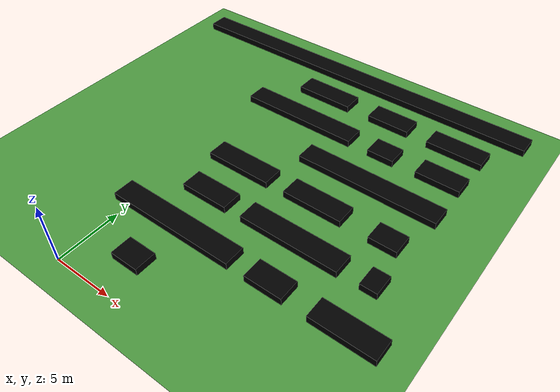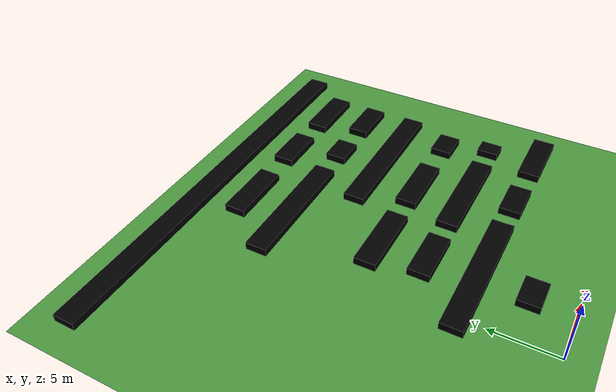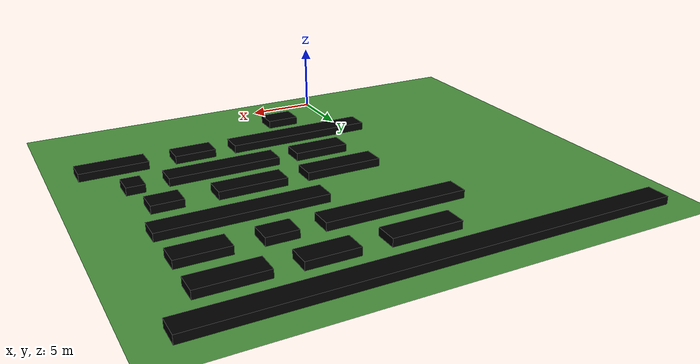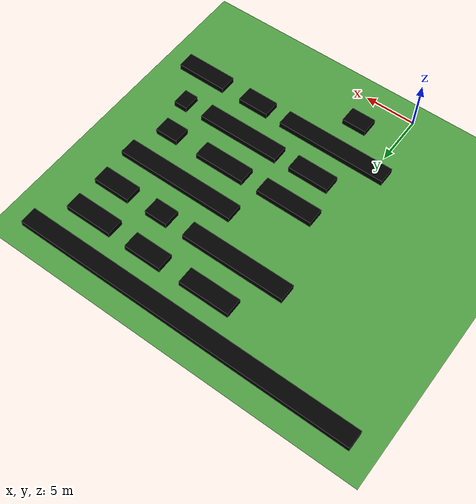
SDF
<sdf version="1.6">
 <world name="default">
  <model name="ground_plane">
   <static>1</static>
   <link name="link">
    <collision name="collision">
     <geometry><plane><normal>0 0 1</normal><size>120 120</size></plane></geometry>
     <surface><friction><ode><mu>100</mu><mu2>50</mu2></ode></friction></surface>
    </collision>
    <visual name="visual">
     <cast_shadows>0</cast_shadows>
     <geometry><plane><normal>0 0 1</normal><size>120 120</size></plane></geometry>
     <material>
      <script><uri>file://media/materials/scripts/gazebo.material</uri><name>Gazebo/Grass</name></script>
     </material>
    </visual>
   </link>
  </model>
  <model name="crop_01_8_clone_0_clone_0_clone_0">
   <link name="crop_01_0::link_0">
    <inertial>
     <mass>10.9148</mass>
     <inertia><ixx>13.7036</ixx><ixy>0</ixy><ixz>0</ixz><iyy>702.087</iyy><iyz>0</iyz><izz>715.772</izz></inertia>
    </inertial>
    <visual name="visual">
     <geometry><box><size>2.41149 1.68705 1</size></box></geometry>
     <material>
      <ambient>0 1 0 1</ambient>
      <diffuse>0 0 0 1</diffuse>
      <specular>0.1 0.1 0.1 1</specular>
      <emissive>0 0 0 0</emissive>
     </material>
    </visual>
    <collision name="collision">
     <geometry><box><size>2.41149 1.68705 1</size></box></geometry>
     <surface>
      <friction>
       <ode><mu>1</mu><mu2>1</mu2><fdir1>0 0 0</fdir1><slip1>0</slip1><slip2>0</slip2></ode>
       <torsional>
        <coefficient>1</coefficient>
        <patch_radius>0</patch_radius>
        <surface_radius>0</surface_radius>
        <use_patch_radius>1</use_patch_radius>
        <ode><slip>0</slip></ode>
       </torsional>
      </friction>
      <bounce><restitution_coefficient>0</restitution_coefficient><threshold>1e+06</threshold></bounce>
      <contact>
       <collide_without_contact>0</collide_without_contact>
       <collide_without_contact_bitmask>1</collide_without_contact_bitmask>
       <collide_bitmask>1</collide_bitmask>
       <ode>
        <soft_cfm>0</soft_cfm>
        <soft_erp>0.2</soft_erp>
        <kp>1e+13</kp>
        <kd>1</kd>
        <max_vel>0.01</max_vel>
        <min_depth>0</min_depth>
       </ode>
       <bullet>
        <split_impulse>1</split_impulse>
        <split_impulse_penetration_threshold>-0.01</split_impulse_penetration_threshold>
        <soft_cfm>0</soft_cfm>
        <soft_erp>0.2</soft_erp>
        <kp>1e+13</kp>
        <kd>1</kd>
       </bullet>
      </contact>
     </surface>
    </collision>
   </link>
   <static>1</static>
   <pose>4.01911 3.07059 0.050638 0 -0 0</pose>
  </model>
  <model name="crop_01_8_clone_0_clone_0_clone_1">
   <link name="crop_01_0::link_0">
    <inertial>
     <mass>10.9148</mass>
     <inertia><ixx>13.7036</ixx><ixy>0</ixy><ixz>0</ixz><iyy>702.087</iyy><iyz>0</iyz><izz>715.772</izz></inertia>
    </inertial>
    <visual name="visual">
     <geometry><box><size>10.9749 1.68705 1</size></box></geometry>
     <material>
      <ambient>0 1 0 1</ambient>
      <diffuse>0 0 0 1</diffuse>
      <specular>0.1 0.1 0.1 1</specular>
      <emissive>0 0 0 0</emissive>
     </material>
    </visual>
    <collision name="collision">
     <geometry><box><size>10.9749 1.68705 1</size></box></geometry>
     <surface>
      <friction>
       <ode><mu>1</mu><mu2>1</mu2><fdir1>0 0 0</fdir1><slip1>0</slip1><slip2>0</slip2></ode>
       <torsional>
        <coefficient>1</coefficient>
        <patch_radius>0</patch_radius>
        <surface_radius>0</surface_radius>
        <use_patch_radius>1</use_patch_radius>
        <ode><slip>0</slip></ode>
       </torsional>
      </friction>
      <bounce><restitution_coefficient>0</restitution_coefficient><threshold>1e+06</threshold></bounce>
      <contact>
       <collide_without_contact>0</collide_without_contact>
       <collide_without_contact_bitmask>1</collide_without_contact_bitmask>
       <collide_bitmask>1</collide_bitmask>
       <ode>
        <soft_cfm>0</soft_cfm>
        <soft_erp>0.2</soft_erp>
        <kp>1e+13</kp>
        <kd>1</kd>
        <max_vel>0.01</max_vel>
        <min_depth>0</min_depth>
       </ode>
       <bullet>
        <split_impulse>1</split_impulse>
        <split_impulse_penetration_threshold>-0.01</split_impulse_penetration_threshold>
        <soft_cfm>0</soft_cfm>
        <soft_erp>0.2</soft_erp>
        <kp>1e+13</kp>
        <kd>1</kd>
       </bullet>
      </contact>
     </surface>
    </collision>
   </link>
   <static>1</static>
   <pose>4.14547 6.85606 0.050638 0 -0 0</pose>
  </model>
  <model name="crop_01_8_clone_0_clone_0_clone_1_clone_clone">
   <link name="crop_01_0::link_0">
    <inertial>
     <mass>10.9148</mass>
     <inertia><ixx>13.7036</ixx><ixy>0</ixy><ixz>0</ixz><iyy>702.087</iyy><iyz>0</iyz><izz>715.772</izz></inertia>
    </inertial>
    <visual name="visual">
     <geometry><box><size>4.09046 1.68705 1</size></box></geometry>
     <material>
      <ambient>0 1 0 1</ambient>
      <diffuse>0 0 0 1</diffuse>
      <specular>0.1 0.1 0.1 1</specular>
      <emissive>0 0 0 0</emissive>
     </material>
    </visual>
    <collision name="collision">
     <geometry><box><size>4.09046 1.68705 1</size></box></geometry>
     <surface>
      <friction>
       <ode><mu>1</mu><mu2>1</mu2><fdir1>0 0 0</fdir1><slip1>0</slip1><slip2>0</slip2></ode>
       <torsional>
        <coefficient>1</coefficient>
        <patch_radius>0</patch_radius>
        <surface_radius>0</surface_radius>
        <use_patch_radius>1</use_patch_radius>
        <ode><slip>0</slip></ode>
       </torsional>
      </friction>
      <bounce><restitution_coefficient>0</restitution_coefficient><threshold>1e+06</threshold></bounce>
      <contact>
       <collide_without_contact>0</collide_without_contact>
       <collide_without_contact_bitmask>1</collide_without_contact_bitmask>
       <collide_bitmask>1</collide_bitmask>
       <ode>
        <soft_cfm>0</soft_cfm>
        <soft_erp>0.2</soft_erp>
        <kp>1e+13</kp>
        <kd>1</kd>
        <max_vel>0.01</max_vel>
        <min_depth>0</min_depth>
       </ode>
       <bullet>
        <split_impulse>1</split_impulse>
        <split_impulse_penetration_threshold>-0.01</split_impulse_penetration_threshold>
        <soft_cfm>0</soft_cfm>
        <soft_erp>0.2</soft_erp>
        <kp>1e+13</kp>
        <kd>1</kd>
       </bullet>
      </contact>
     </surface>
    </collision>
   </link>
   <static>1</static>
   <pose>4.07189 10.5095 0.050638 0 -0 0</pose>
  </model>
  <model name="crop_01_8_clone_0_clone_0_clone_1_clone_clone_clone">
   <link name="crop_01_0::link_0">
    <inertial>
     <mass>10.9148</mass>
     <inertia><ixx>13.7036</ixx><ixy>0</ixy><ixz>0</ixz><iyy>702.087</iyy><iyz>0</iyz><izz>715.772</izz></inertia>
    </inertial>
    <visual name="visual">
     <geometry><box><size>5.69318 1.68705 1</size></box></geometry>
     <material>
      <ambient>0 1 0 1</ambient>
      <diffuse>0 0 0 1</diffuse>
      <specular>0.1 0.1 0.1 1</specular>
      <emissive>0 0 0 0</emissive>
     </material>
    </visual>
    <collision name="collision">
     <geometry><box><size>5.69318 1.68705 1</size></box></geometry>
     <surface>
      <friction>
       <ode><mu>1</mu><mu2>1</mu2><fdir1>0 0 0</fdir1><slip1>0</slip1><slip2>0</slip2></ode>
       <torsional>
        <coefficient>1</coefficient>
        <patch_radius>0</patch_radius>
        <surface_radius>0</surface_radius>
        <use_patch_radius>1</use_patch_radius>
        <ode><slip>0</slip></ode>
       </torsional>
      </friction>
      <bounce><restitution_coefficient>0</restitution_coefficient><threshold>1e+06</threshold></bounce>
      <contact>
       <collide_without_contact>0</collide_without_contact>
       <collide_without_contact_bitmask>1</collide_without_contact_bitmask>
       <collide_bitmask>1</collide_bitmask>
       <ode>
        <soft_cfm>0</soft_cfm>
        <soft_erp>0.2</soft_erp>
        <kp>1e+13</kp>
        <kd>1</kd>
        <max_vel>0.01</max_vel>
        <min_depth>0</min_depth>
       </ode>
       <bullet>
        <split_impulse>1</split_impulse>
        <split_impulse_penetration_threshold>-0.01</split_impulse_penetration_threshold>
        <soft_cfm>0</soft_cfm>
        <soft_erp>0.2</soft_erp>
        <kp>1e+13</kp>
        <kd>1</kd>
       </bullet>
      </contact>
     </surface>
    </collision>
   </link>
   <static>1</static>
   <pose>4.07232 14.2098 0.050638 0 -0 0</pose>
  </model>
  <model name="crop_01_8_clone_0_clone_0_clone_1_clone_clone_clone_clone_0">
   <link name="crop_01_0::link_0">
    <inertial>
     <mass>10.9148</mass>
     <inertia><ixx>13.7036</ixx><ixy>0</ixy><ixz>0</ixz><iyy>702.087</iyy><iyz>0</iyz><izz>715.772</izz></inertia>
    </inertial>
    <visual name="visual">
     <geometry><box><size>10.3295 1.68705 1</size></box></geometry>
     <material>
      <ambient>0 1 0 1</ambient>
      <diffuse>0 0 0 1</diffuse>
      <specular>0.1 0.1 0.1 1</specular>
      <emissive>0 0 0 0</emissive>
     </material>
    </visual>
    <collision name="collision">
     <geometry><box><size>10.3295 1.68705 1</size></box></geometry>
     <surface>
      <friction>
       <ode><mu>1</mu><mu2>1</mu2><fdir1>0 0 0</fdir1><slip1>0</slip1><slip2>0</slip2></ode>
       <torsional>
        <coefficient>1</coefficient>
        <patch_radius>0</patch_radius>
        <surface_radius>0</surface_radius>
        <use_patch_radius>1</use_patch_radius>
        <ode><slip>0</slip></ode>
       </torsional>
      </friction>
      <bounce><restitution_coefficient>0</restitution_coefficient><threshold>1e+06</threshold></bounce>
      <contact>
       <collide_without_contact>0</collide_without_contact>
       <collide_without_contact_bitmask>1</collide_without_contact_bitmask>
       <collide_bitmask>1</collide_bitmask>
       <ode>
        <soft_cfm>0</soft_cfm>
        <soft_erp>0.2</soft_erp>
        <kp>1e+13</kp>
        <kd>1</kd>
        <max_vel>0.01</max_vel>
        <min_depth>0</min_depth>
       </ode>
       <bullet>
        <split_impulse>1</split_impulse>
        <split_impulse_penetration_threshold>-0.01</split_impulse_penetration_threshold>
        <soft_cfm>0</soft_cfm>
        <soft_erp>0.2</soft_erp>
        <kp>1e+13</kp>
        <kd>1</kd>
       </bullet>
      </contact>
     </surface>
    </collision>
   </link>
   <static>1</static>
   <pose>4.08383 21.7323 0.050638 0 -0 0</pose>
  </model>
  <model name="crop_01_8_clone_0_clone_0_clone_1_clone_clone_clone_clone_0_clone">
   <link name="crop_01_0::link_0">
    <inertial>
     <mass>10.9148</mass>
     <inertia><ixx>13.7036</ixx><ixy>0</ixy><ixz>0</ixz><iyy>702.087</iyy><iyz>0</iyz><izz>715.772</izz></inertia>
    </inertial>
    <visual name="visual">
     <geometry><box><size>5.03328 1.68705 1</size></box></geometry>
     <material>
      <ambient>0 1 0 1</ambient>
      <diffuse>0 0 0 1</diffuse>
      <specular>0.1 0.1 0.1 1</specular>
      <emissive>0 0 0 0</emissive>
     </material>
    </visual>
    <collision name="collision">
     <geometry><box><size>5.03328 1.68705 1</size></box></geometry>
     <surface>
      <friction>
       <ode><mu>1</mu><mu2>1</mu2><fdir1>0 0 0</fdir1><slip1>0</slip1><slip2>0</slip2></ode>
       <torsional>
        <coefficient>1</coefficient>
        <patch_radius>0</patch_radius>
        <surface_radius>0</surface_radius>
        <use_patch_radius>1</use_patch_radius>
        <ode><slip>0</slip></ode>
       </torsional>
      </friction>
      <bounce><restitution_coefficient>0</restitution_coefficient><threshold>1e+06</threshold></bounce>
      <contact>
       <collide_without_contact>0</collide_without_contact>
       <collide_without_contact_bitmask>1</collide_without_contact_bitmask>
       <collide_bitmask>1</collide_bitmask>
       <ode>
        <soft_cfm>0</soft_cfm>
        <soft_erp>0.2</soft_erp>
        <kp>1e+13</kp>
        <kd>1</kd>
        <max_vel>0.01</max_vel>
        <min_depth>0</min_depth>
       </ode>
       <bullet>
        <split_impulse>1</split_impulse>
        <split_impulse_penetration_threshold>-0.01</split_impulse_penetration_threshold>
        <soft_cfm>0</soft_cfm>
        <soft_erp>0.2</soft_erp>
        <kp>1e+13</kp>
        <kd>1</kd>
       </bullet>
      </contact>
     </surface>
    </collision>
   </link>
   <static>1</static>
   <pose>4.15605 25.4436 0.050638 0 -0 0</pose>
  </model>
  <model name="crop_01_8_clone_0_clone_0_clone_1_clone_clone_clone_clone_0_clone_clone_0">
   <link name="crop_01_0::link_0">
    <inertial>
     <mass>10.9148</mass>
     <inertia><ixx>13.7036</ixx><ixy>0</ixy><ixz>0</ixz><iyy>702.087</iyy><iyz>0</iyz><izz>715.772</izz></inertia>
    </inertial>
    <visual name="visual">
     <geometry><box><size>3.71638 1.68705 1</size></box></geometry>
     <material>
      <ambient>0 1 0 1</ambient>
      <diffuse>0 0 0 1</diffuse>
      <specular>0.1 0.1 0.1 1</specular>
      <emissive>0 0 0 0</emissive>
     </material>
    </visual>
    <collision name="collision">
     <geometry><box><size>3.71638 1.68705 1</size></box></geometry>
     <surface>
      <friction>
       <ode><mu>1</mu><mu2>1</mu2><fdir1>0 0 0</fdir1><slip1>0</slip1><slip2>0</slip2></ode>
       <torsional>
        <coefficient>1</coefficient>
        <patch_radius>0</patch_radius>
        <surface_radius>0</surface_radius>
        <use_patch_radius>1</use_patch_radius>
        <ode><slip>0</slip></ode>
       </torsional>
      </friction>
      <bounce><restitution_coefficient>0</restitution_coefficient><threshold>1e+06</threshold></bounce>
      <contact>
       <collide_without_contact>0</collide_without_contact>
       <collide_without_contact_bitmask>1</collide_without_contact_bitmask>
       <collide_bitmask>1</collide_bitmask>
       <ode>
        <soft_cfm>0</soft_cfm>
        <soft_erp>0.2</soft_erp>
        <kp>1e+13</kp>
        <kd>1</kd>
        <max_vel>0.01</max_vel>
        <min_depth>0</min_depth>
       </ode>
       <bullet>
        <split_impulse>1</split_impulse>
        <split_impulse_penetration_threshold>-0.01</split_impulse_penetration_threshold>
        <soft_cfm>0</soft_cfm>
        <soft_erp>0.2</soft_erp>
        <kp>1e+13</kp>
        <kd>1</kd>
       </bullet>
      </contact>
     </surface>
    </collision>
   </link>
   <static>1</static>
   <pose>10.6039 25.4804 0.050638 0 -0 0</pose>
  </model>
  <model name="crop_01_8_clone_0_clone_0_clone_1_clone_clone_clone_clone_0_clone_clone_0_clone">
   <link name="crop_01_0::link_0">
    <inertial>
     <mass>10.9148</mass>
     <inertia><ixx>13.7036</ixx><ixy>0</ixy><ixz>0</ixz><iyy>702.087</iyy><iyz>0</iyz><izz>715.772</izz></inertia>
    </inertial>
    <visual name="visual">
     <geometry><box><size>4.76608 1.68705 1</size></box></geometry>
     <material>
      <ambient>0 1 0 1</ambient>
      <diffuse>0 0 0 1</diffuse>
      <specular>0.1 0.1 0.1 1</specular>
      <emissive>0 0 0 0</emissive>
     </material>
    </visual>
    <collision name="collision">
     <geometry><box><size>4.76608 1.68705 1</size></box></geometry>
     <surface>
      <friction>
       <ode><mu>1</mu><mu2>1</mu2><fdir1>0 0 0</fdir1><slip1>0</slip1><slip2>0</slip2></ode>
       <torsional>
        <coefficient>1</coefficient>
        <patch_radius>0</patch_radius>
        <surface_radius>0</surface_radius>
        <use_patch_radius>1</use_patch_radius>
        <ode><slip>0</slip></ode>
       </torsional>
      </friction>
      <bounce><restitution_coefficient>0</restitution_coefficient><threshold>1e+06</threshold></bounce>
      <contact>
       <collide_without_contact>0</collide_without_contact>
       <collide_without_contact_bitmask>1</collide_without_contact_bitmask>
       <collide_bitmask>1</collide_bitmask>
       <ode>
        <soft_cfm>0</soft_cfm>
        <soft_erp>0.2</soft_erp>
        <kp>1e+13</kp>
        <kd>1</kd>
        <max_vel>0.01</max_vel>
        <min_depth>0</min_depth>
       </ode>
       <bullet>
        <split_impulse>1</split_impulse>
        <split_impulse_penetration_threshold>-0.01</split_impulse_penetration_threshold>
        <soft_cfm>0</soft_cfm>
        <soft_erp>0.2</soft_erp>
        <kp>1e+13</kp>
        <kd>1</kd>
       </bullet>
      </contact>
     </surface>
    </collision>
   </link>
   <static>1</static>
   <pose>16.6768 25.3873 0.050638 0 -0 0</pose>
  </model>
  <model name="crop_01_8_clone_0_clone_0_clone_1_clone_clone_clone_clone_0_clone_clone_0_clone_0">
   <link name="crop_01_0::link_0">
    <inertial>
     <mass>10.9148</mass>
     <inertia><ixx>13.7036</ixx><ixy>0</ixy><ixz>0</ixz><iyy>702.087</iyy><iyz>0</iyz><izz>715.772</izz></inertia>
    </inertial>
    <visual name="visual">
     <geometry><box><size>2.29963 1.68705 1</size></box></geometry>
     <material>
      <ambient>0 1 0 1</ambient>
      <diffuse>0 0 0 1</diffuse>
      <specular>0.1 0.1 0.1 1</specular>
      <emissive>0 0 0 0</emissive>
     </material>
    </visual>
    <collision name="collision">
     <geometry><box><size>2.29963 1.68705 1</size></box></geometry>
     <surface>
      <friction>
       <ode><mu>1</mu><mu2>1</mu2><fdir1>0 0 0</fdir1><slip1>0</slip1><slip2>0</slip2></ode>
       <torsional>
        <coefficient>1</coefficient>
        <patch_radius>0</patch_radius>
        <surface_radius>0</surface_radius>
        <use_patch_radius>1</use_patch_radius>
        <ode><slip>0</slip></ode>
       </torsional>
      </friction>
      <bounce><restitution_coefficient>0</restitution_coefficient><threshold>1e+06</threshold></bounce>
      <contact>
       <collide_without_contact>0</collide_without_contact>
       <collide_without_contact_bitmask>1</collide_without_contact_bitmask>
       <collide_bitmask>1</collide_bitmask>
       <ode>
        <soft_cfm>0</soft_cfm>
        <soft_erp>0.2</soft_erp>
        <kp>1e+13</kp>
        <kd>1</kd>
        <max_vel>0.01</max_vel>
        <min_depth>0</min_depth>
       </ode>
       <bullet>
        <split_impulse>1</split_impulse>
        <split_impulse_penetration_threshold>-0.01</split_impulse_penetration_threshold>
        <soft_cfm>0</soft_cfm>
        <soft_erp>0.2</soft_erp>
        <kp>1e+13</kp>
        <kd>1</kd>
       </bullet>
      </contact>
     </surface>
    </collision>
   </link>
   <static>1</static>
   <pose>12.1672 21.7564 0.050638 0 -0 0</pose>
  </model>
  <model name="crop_01_8_clone_0_clone_0_clone_1_clone_clone_clone_clone_0_clone_clone_0_clone_1">
   <link name="crop_01_0::link_0">
    <inertial>
     <mass>10.9148</mass>
     <inertia><ixx>13.7036</ixx><ixy>0</ixy><ixz>0</ixz><iyy>702.087</iyy><iyz>0</iyz><izz>715.772</izz></inertia>
    </inertial>
    <visual name="visual">
     <geometry><box><size>3.71639 1.68705 1</size></box></geometry>
     <material>
      <ambient>0 1 0 1</ambient>
      <diffuse>0 0 0 1</diffuse>
      <specular>0.1 0.1 0.1 1</specular>
      <emissive>0 0 0 0</emissive>
     </material>
    </visual>
    <collision name="collision">
     <geometry><box><size>3.71639 1.68705 1</size></box></geometry>
     <surface>
      <friction>
       <ode><mu>1</mu><mu2>1</mu2><fdir1>0 0 0</fdir1><slip1>0</slip1><slip2>0</slip2></ode>
       <torsional>
        <coefficient>1</coefficient>
        <patch_radius>0</patch_radius>
        <surface_radius>0</surface_radius>
        <use_patch_radius>1</use_patch_radius>
        <ode><slip>0</slip></ode>
       </torsional>
      </friction>
      <bounce><restitution_coefficient>0</restitution_coefficient><threshold>1e+06</threshold></bounce>
      <contact>
       <collide_without_contact>0</collide_without_contact>
       <collide_without_contact_bitmask>1</collide_without_contact_bitmask>
       <collide_bitmask>1</collide_bitmask>
       <ode>
        <soft_cfm>0</soft_cfm>
        <soft_erp>0.2</soft_erp>
        <kp>1e+13</kp>
        <kd>1</kd>
        <max_vel>0.01</max_vel>
        <min_depth>0</min_depth>
       </ode>
       <bullet>
        <split_impulse>1</split_impulse>
        <split_impulse_penetration_threshold>-0.01</split_impulse_penetration_threshold>
        <soft_cfm>0</soft_cfm>
        <soft_erp>0.2</soft_erp>
        <kp>1e+13</kp>
        <kd>1</kd>
       </bullet>
      </contact>
     </surface>
    </collision>
   </link>
   <static>1</static>
   <pose>17.1401 21.789 0.050638 0 -0 0</pose>
  </model>
  <model name="crop_01_8_clone_0_clone_0_clone_1_clone_clone_clone_clone_0_clone_clone_2">
   <link name="crop_01_0::link_0">
    <inertial>
     <mass>10.9148</mass>
     <inertia><ixx>13.7036</ixx><ixy>0</ixy><ixz>0</ixz><iyy>702.087</iyy><iyz>0</iyz><izz>715.772</izz></inertia>
    </inertial>
    <visual name="visual">
     <geometry><box><size>11.9696 1.68705 1</size></box></geometry>
     <material>
      <ambient>0 1 0 1</ambient>
      <diffuse>0 0 0 1</diffuse>
      <specular>0.1 0.1 0.1 1</specular>
      <emissive>0 0 0 0</emissive>
     </material>
    </visual>
    <collision name="collision">
     <geometry><box><size>11.9696 1.68705 1</size></box></geometry>
     <surface>
      <friction>
       <ode><mu>1</mu><mu2>1</mu2><fdir1>0 0 0</fdir1><slip1>0</slip1><slip2>0</slip2></ode>
       <torsional>
        <coefficient>1</coefficient>
        <patch_radius>0</patch_radius>
        <surface_radius>0</surface_radius>
        <use_patch_radius>1</use_patch_radius>
        <ode><slip>0</slip></ode>
       </torsional>
      </friction>
      <bounce><restitution_coefficient>0</restitution_coefficient><threshold>1e+06</threshold></bounce>
      <contact>
       <collide_without_contact>0</collide_without_contact>
       <collide_without_contact_bitmask>1</collide_without_contact_bitmask>
       <collide_bitmask>1</collide_bitmask>
       <ode>
        <soft_cfm>0</soft_cfm>
        <soft_erp>0.2</soft_erp>
        <kp>1e+13</kp>
        <kd>1</kd>
        <max_vel>0.01</max_vel>
        <min_depth>0</min_depth>
       </ode>
       <bullet>
        <split_impulse>1</split_impulse>
        <split_impulse_penetration_threshold>-0.01</split_impulse_penetration_threshold>
        <soft_cfm>0</soft_cfm>
        <soft_erp>0.2</soft_erp>
        <kp>1e+13</kp>
        <kd>1</kd>
       </bullet>
      </contact>
     </surface>
    </collision>
   </link>
   <static>1</static>
   <pose>13.0806 18.0451 0.050638 0 -0 0</pose>
  </model>
  <model name="crop_01_8_clone_0_clone_0_clone_1_clone_clone_clone_clone_0_clone_clone_3">
   <link name="crop_01_0::link_0">
    <inertial>
     <mass>10.9148</mass>
     <inertia><ixx>13.7036</ixx><ixy>0</ixy><ixz>0</ixz><iyy>702.087</iyy><iyz>0</iyz><izz>715.772</izz></inertia>
    </inertial>
    <visual name="visual">
     <geometry><box><size>5.03328 1.68705 1</size></box></geometry>
     <material>
      <ambient>0 1 0 1</ambient>
      <diffuse>0 0 0 1</diffuse>
      <specular>0.1 0.1 0.1 1</specular>
      <emissive>0 0 0 0</emissive>
     </material>
    </visual>
    <collision name="collision">
     <geometry><box><size>5.03328 1.68705 1</size></box></geometry>
     <surface>
      <friction>
       <ode><mu>1</mu><mu2>1</mu2><fdir1>0 0 0</fdir1><slip1>0</slip1><slip2>0</slip2></ode>
       <torsional>
        <coefficient>1</coefficient>
        <patch_radius>0</patch_radius>
        <surface_radius>0</surface_radius>
        <use_patch_radius>1</use_patch_radius>
        <ode><slip>0</slip></ode>
       </torsional>
      </friction>
      <bounce><restitution_coefficient>0</restitution_coefficient><threshold>1e+06</threshold></bounce>
      <contact>
       <collide_without_contact>0</collide_without_contact>
       <collide_without_contact_bitmask>1</collide_without_contact_bitmask>
       <collide_bitmask>1</collide_bitmask>
       <ode>
        <soft_cfm>0</soft_cfm>
        <soft_erp>0.2</soft_erp>
        <kp>1e+13</kp>
        <kd>1</kd>
        <max_vel>0.01</max_vel>
        <min_depth>0</min_depth>
       </ode>
       <bullet>
        <split_impulse>1</split_impulse>
        <split_impulse_penetration_threshold>-0.01</split_impulse_penetration_threshold>
        <soft_cfm>0</soft_cfm>
        <soft_erp>0.2</soft_erp>
        <kp>1e+13</kp>
        <kd>1</kd>
       </bullet>
      </contact>
     </surface>
    </collision>
   </link>
   <static>1</static>
   <pose>11.0347 14.261 0.050638 0 -0 0</pose>
  </model>
  <model name="crop_01_8_clone_0_clone_0_clone_1_clone_clone_clone_clone_0_clone_clone_0_clone_0_clone">
   <link name="crop_01_0::link_0">
    <inertial>
     <mass>10.9148</mass>
     <inertia><ixx>13.7036</ixx><ixy>0</ixy><ixz>0</ixz><iyy>702.087</iyy><iyz>0</iyz><izz>715.772</izz></inertia>
    </inertial>
    <visual name="visual">
     <geometry><box><size>2.29963 1.68705 1</size></box></geometry>
     <material>
      <ambient>0 1 0 1</ambient>
      <diffuse>0 0 0 1</diffuse>
      <specular>0.1 0.1 0.1 1</specular>
      <emissive>0 0 0 0</emissive>
     </material>
    </visual>
    <collision name="collision">
     <geometry><box><size>2.29963 1.68705 1</size></box></geometry>
     <surface>
      <friction>
       <ode><mu>1</mu><mu2>1</mu2><fdir1>0 0 0</fdir1><slip1>0</slip1><slip2>0</slip2></ode>
       <torsional>
        <coefficient>1</coefficient>
        <patch_radius>0</patch_radius>
        <surface_radius>0</surface_radius>
        <use_patch_radius>1</use_patch_radius>
        <ode><slip>0</slip></ode>
       </torsional>
      </friction>
      <bounce><restitution_coefficient>0</restitution_coefficient><threshold>1e+06</threshold></bounce>
      <contact>
       <collide_without_contact>0</collide_without_contact>
       <collide_without_contact_bitmask>1</collide_without_contact_bitmask>
       <collide_bitmask>1</collide_bitmask>
       <ode>
        <soft_cfm>0</soft_cfm>
        <soft_erp>0.2</soft_erp>
        <kp>1e+13</kp>
        <kd>1</kd>
        <max_vel>0.01</max_vel>
        <min_depth>0</min_depth>
       </ode>
       <bullet>
        <split_impulse>1</split_impulse>
        <split_impulse_penetration_threshold>-0.01</split_impulse_penetration_threshold>
        <soft_cfm>0</soft_cfm>
        <soft_erp>0.2</soft_erp>
        <kp>1e+13</kp>
        <kd>1</kd>
       </bullet>
      </contact>
     </surface>
    </collision>
   </link>
   <static>1</static>
   <pose>17.0148 14.2347 0.050638 0 -0 0</pose>
  </model>
  <model name="crop_01_8_clone_0_clone_0_clone_1_clone_clone_clone_clone_0_clone_clone_4_clone">
   <link name="crop_01_0::link_0">
    <inertial>
     <mass>10.9148</mass>
     <inertia><ixx>13.7036</ixx><ixy>0</ixy><ixz>0</ixz><iyy>702.087</iyy><iyz>0</iyz><izz>715.772</izz></inertia>
    </inertial>
    <visual name="visual">
     <geometry><box><size>8.26711 1.68705 1</size></box></geometry>
     <material>
      <ambient>0 1 0 1</ambient>
      <diffuse>0 0 0 1</diffuse>
      <specular>0.1 0.1 0.1 1</specular>
      <emissive>0 0 0 0</emissive>
     </material>
    </visual>
    <collision name="collision">
     <geometry><box><size>8.26711 1.68705 1</size></box></geometry>
     <surface>
      <friction>
       <ode><mu>1</mu><mu2>1</mu2><fdir1>0 0 0</fdir1><slip1>0</slip1><slip2>0</slip2></ode>
       <torsional>
        <coefficient>1</coefficient>
        <patch_radius>0</patch_radius>
        <surface_radius>0</surface_radius>
        <use_patch_radius>1</use_patch_radius>
        <ode><slip>0</slip></ode>
       </torsional>
      </friction>
      <bounce><restitution_coefficient>0</restitution_coefficient><threshold>1e+06</threshold></bounce>
      <contact>
       <collide_without_contact>0</collide_without_contact>
       <collide_without_contact_bitmask>1</collide_without_contact_bitmask>
       <collide_bitmask>1</collide_bitmask>
       <ode>
        <soft_cfm>0</soft_cfm>
        <soft_erp>0.2</soft_erp>
        <kp>1e+13</kp>
        <kd>1</kd>
        <max_vel>0.01</max_vel>
        <min_depth>0</min_depth>
       </ode>
       <bullet>
        <split_impulse>1</split_impulse>
        <split_impulse_penetration_threshold>-0.01</split_impulse_penetration_threshold>
        <soft_cfm>0</soft_cfm>
        <soft_erp>0.2</soft_erp>
        <kp>1e+13</kp>
        <kd>1</kd>
       </bullet>
      </contact>
     </surface>
    </collision>
   </link>
   <static>1</static>
   <pose>11.7047 10.5535 0.050638 0 -0 0</pose>
  </model>
  <model name="crop_01_8_clone_0_clone_0_clone_1_clone_clone_clone_clone_clone_clone">
   <link name="crop_01_0::link_0">
    <inertial>
     <mass>10.9148</mass>
     <inertia><ixx>13.7036</ixx><ixy>0</ixy><ixz>0</ixz><iyy>702.087</iyy><iyz>0</iyz><izz>715.772</izz></inertia>
    </inertial>
    <visual name="visual">
     <geometry><box><size>1.36286 1.68705 1</size></box></geometry>
     <material>
      <ambient>0 1 0 1</ambient>
      <diffuse>0 0 0 1</diffuse>
      <specular>0.1 0.1 0.1 1</specular>
      <emissive>0 0 0 0</emissive>
     </material>
    </visual>
    <collision name="collision">
     <geometry><box><size>1.36286 1.68705 1</size></box></geometry>
     <surface>
      <friction>
       <ode><mu>1</mu><mu2>1</mu2><fdir1>0 0 0</fdir1><slip1>0</slip1><slip2>0</slip2></ode>
       <torsional>
        <coefficient>1</coefficient>
        <patch_radius>0</patch_radius>
        <surface_radius>0</surface_radius>
        <use_patch_radius>1</use_patch_radius>
        <ode><slip>0</slip></ode>
       </torsional>
      </friction>
      <bounce><restitution_coefficient>0</restitution_coefficient><threshold>1e+06</threshold></bounce>
      <contact>
       <collide_without_contact>0</collide_without_contact>
       <collide_without_contact_bitmask>1</collide_without_contact_bitmask>
       <collide_bitmask>1</collide_bitmask>
       <ode>
        <soft_cfm>0</soft_cfm>
        <soft_erp>0.2</soft_erp>
        <kp>1e+13</kp>
        <kd>1</kd>
        <max_vel>0.01</max_vel>
        <min_depth>0</min_depth>
       </ode>
       <bullet>
        <split_impulse>1</split_impulse>
        <split_impulse_penetration_threshold>-0.01</split_impulse_penetration_threshold>
        <soft_cfm>0</soft_cfm>
        <soft_erp>0.2</soft_erp>
        <kp>1e+13</kp>
        <kd>1</kd>
       </bullet>
      </contact>
     </surface>
    </collision>
   </link>
   <static>1</static>
   <pose>18.186 10.6786 0.050638 0 -0 0</pose>
  </model>
  <model name="crop_01_8_clone_0_clone_0_clone_1_clone_clone_clone_clone_clone_0">
   <link name="crop_01_0::link_0">
    <inertial>
     <mass>10.9148</mass>
     <inertia><ixx>13.7036</ixx><ixy>0</ixy><ixz>0</ixz><iyy>702.087</iyy><iyz>0</iyz><izz>715.772</izz></inertia>
    </inertial>
    <visual name="visual">
     <geometry><box><size>3.0801 1.68705 1</size></box></geometry>
     <material>
      <ambient>0 1 0 1</ambient>
      <diffuse>0 0 0 1</diffuse>
      <specular>0.1 0.1 0.1 1</specular>
      <emissive>0 0 0 0</emissive>
     </material>
    </visual>
    <collision name="collision">
     <geometry><box><size>3.0801 1.68705 1</size></box></geometry>
     <surface>
      <friction>
       <ode><mu>1</mu><mu2>1</mu2><fdir1>0 0 0</fdir1><slip1>0</slip1><slip2>0</slip2></ode>
       <torsional>
        <coefficient>1</coefficient>
        <patch_radius>0</patch_radius>
        <surface_radius>0</surface_radius>
        <use_patch_radius>1</use_patch_radius>
        <ode><slip>0</slip></ode>
       </torsional>
      </friction>
      <bounce><restitution_coefficient>0</restitution_coefficient><threshold>1e+06</threshold></bounce>
      <contact>
       <collide_without_contact>0</collide_without_contact>
       <collide_without_contact_bitmask>1</collide_without_contact_bitmask>
       <collide_bitmask>1</collide_bitmask>
       <ode>
        <soft_cfm>0</soft_cfm>
        <soft_erp>0.2</soft_erp>
        <kp>1e+13</kp>
        <kd>1</kd>
        <max_vel>0.01</max_vel>
        <min_depth>0</min_depth>
       </ode>
       <bullet>
        <split_impulse>1</split_impulse>
        <split_impulse_penetration_threshold>-0.01</split_impulse_penetration_threshold>
        <soft_cfm>0</soft_cfm>
        <soft_erp>0.2</soft_erp>
        <kp>1e+13</kp>
        <kd>1</kd>
       </bullet>
      </contact>
     </surface>
    </collision>
   </link>
   <static>1</static>
   <pose>12.7024 6.83062 0.050638 0 -0 0</pose>
  </model>
  <model name="crop_01_8_clone_0_clone_0_clone_1_clone_clone_clone_clone_0_clone_clone_5">
   <link name="crop_01_0::link_0">
    <inertial>
     <mass>10.9148</mass>
     <inertia><ixx>13.7036</ixx><ixy>0</ixy><ixz>0</ixz><iyy>702.087</iyy><iyz>0</iyz><izz>715.772</izz></inertia>
    </inertial>
    <visual name="visual">
     <geometry><box><size>5.03328 1.68705 1</size></box></geometry>
     <material>
      <ambient>0 1 0 1</ambient>
      <diffuse>0 0 0 1</diffuse>
      <specular>0.1 0.1 0.1 1</specular>
      <emissive>0 0 0 0</emissive>
     </material>
    </visual>
    <collision name="collision">
     <geometry><box><size>5.03328 1.68705 1</size></box></geometry>
     <surface>
      <friction>
       <ode><mu>1</mu><mu2>1</mu2><fdir1>0 0 0</fdir1><slip1>0</slip1><slip2>0</slip2></ode>
       <torsional>
        <coefficient>1</coefficient>
        <patch_radius>0</patch_radius>
        <surface_radius>0</surface_radius>
        <use_patch_radius>1</use_patch_radius>
        <ode><slip>0</slip></ode>
       </torsional>
      </friction>
      <bounce><restitution_coefficient>0</restitution_coefficient><threshold>1e+06</threshold></bounce>
      <contact>
       <collide_without_contact>0</collide_without_contact>
       <collide_without_contact_bitmask>1</collide_without_contact_bitmask>
       <collide_bitmask>1</collide_bitmask>
       <ode>
        <soft_cfm>0</soft_cfm>
        <soft_erp>0.2</soft_erp>
        <kp>1e+13</kp>
        <kd>1</kd>
        <max_vel>0.01</max_vel>
        <min_depth>0</min_depth>
       </ode>
       <bullet>
        <split_impulse>1</split_impulse>
        <split_impulse_penetration_threshold>-0.01</split_impulse_penetration_threshold>
        <soft_cfm>0</soft_cfm>
        <soft_erp>0.2</soft_erp>
        <kp>1e+13</kp>
        <kd>1</kd>
       </bullet>
      </contact>
     </surface>
    </collision>
   </link>
   <static>1</static>
   <pose>18.7327 6.8025 0.050638 0 -0 0</pose>
  </model>
  <model name="crop_01_8_clone_0_clone_0_clone_1_clone_clone_clone_clone_0_clone_0">
   <link name="crop_01_0::link_0">
    <inertial>
     <mass>10.9148</mass>
     <inertia><ixx>13.7036</ixx><ixy>0</ixy><ixz>0</ixz><iyy>702.087</iyy><iyz>0</iyz><izz>715.772</izz></inertia>
    </inertial>
    <visual name="visual">
     <geometry><box><size>33.4195 1.68705 1</size></box></geometry>
     <material>
      <ambient>0 1 0 1</ambient>
      <diffuse>0 0 0 1</diffuse>
      <specular>0.1 0.1 0.1 1</specular>
      <emissive>0 0 0 0</emissive>
     </material>
    </visual>
    <collision name="collision">
     <geometry><box><size>33.4195 1.68705 1</size></box></geometry>
     <surface>
      <friction>
       <ode><mu>1</mu><mu2>1</mu2><fdir1>0 0 0</fdir1><slip1>0</slip1><slip2>0</slip2></ode>
       <torsional>
        <coefficient>1</coefficient>
        <patch_radius>0</patch_radius>
        <surface_radius>0</surface_radius>
        <use_patch_radius>1</use_patch_radius>
        <ode><slip>0</slip></ode>
       </torsional>
      </friction>
      <bounce><restitution_coefficient>0</restitution_coefficient><threshold>1e+06</threshold></bounce>
      <contact>
       <collide_without_contact>0</collide_without_contact>
       <collide_without_contact_bitmask>1</collide_without_contact_bitmask>
       <collide_bitmask>1</collide_bitmask>
       <ode>
        <soft_cfm>0</soft_cfm>
        <soft_erp>0.2</soft_erp>
        <kp>1e+13</kp>
        <kd>1</kd>
        <max_vel>0.01</max_vel>
        <min_depth>0</min_depth>
       </ode>
       <bullet>
        <split_impulse>1</split_impulse>
        <split_impulse_penetration_threshold>-0.01</split_impulse_penetration_threshold>
        <soft_cfm>0</soft_cfm>
        <soft_erp>0.2</soft_erp>
        <kp>1e+13</kp>
        <kd>1</kd>
       </bullet>
      </contact>
     </surface>
    </collision>
   </link>
   <static>1</static>
   <pose>4.38091 28.9127 0.050638 0 -0 0</pose>
  </model>
 </world>
</sdf>
